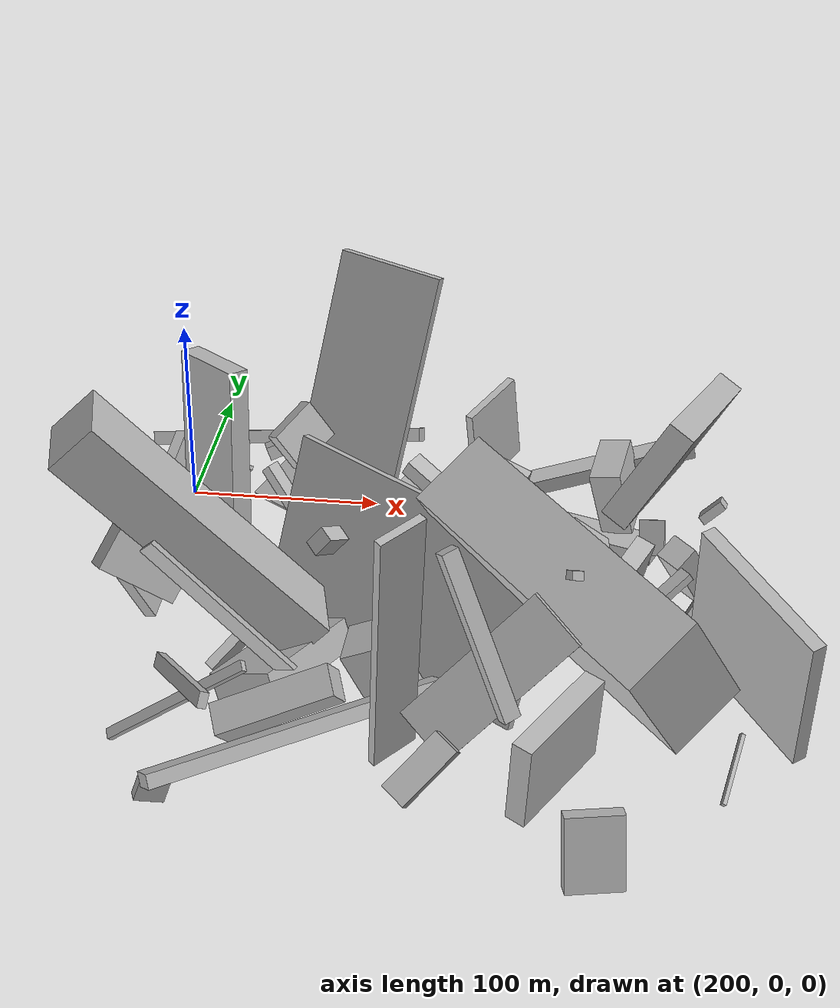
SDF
<sdf version="1.6">
 <world name="default">
  <model name="building_1">
   <static>0</static>
   <pose>272.4165706536021 -54.26228623214429 72.06441700890518 -2.3123806209111533 0.9907104650469202 0.10993199374310866</pose>
   <link name="link">
    <gravity>0</gravity>
    <pose>0 0 4.0 0 0 0</pose>
    <collision name="collision"><geometry><box><size>22 26 8</size></box></geometry></collision>
    <visual name="visual">
     <cast_shadows>0</cast_shadows>
     <geometry><box><size>22 26 8</size></box></geometry>
     <material>
      <script>
       <uri>model://HANNAS_wall/materials/scripts</uri>
       <uri>model://HANNAS_wall/materials/textures</uri>
       <name>vrc/HANNAS_wall</name>
      </script>
     </material>
    </visual>
   </link>
  </model>
  <model name="building_2">
   <static>0</static>
   <pose>323.82430526786845 -47.18001517054745 79.09906799330403 -1.2248675999530452 -1.2489831980606851 0.9320766156826963</pose>
   <link name="link">
    <gravity>0</gravity>
    <pose>0 0 26.5 0 0 0</pose>
    <collision name="collision"><geometry><box><size>150 6 53</size></box></geometry></collision>
    <visual name="visual">
     <cast_shadows>0</cast_shadows>
     <geometry><box><size>150 6 53</size></box></geometry>
     <material>
      <script>
       <uri>model://HANNAS_wall/materials/scripts</uri>
       <uri>model://HANNAS_wall/materials/textures</uri>
       <name>vrc/HANNAS_wall</name>
      </script>
     </material>
    </visual>
   </link>
  </model>
  <model name="building_7">
   <static>0</static>
   <pose>299.53094110872917 -233.97817949876355 25.650742074589843 1.98064890985388 -0.05651019234095352 -2.4577254015816905</pose>
   <link name="link">
    <gravity>0</gravity>
    <pose>0 0 4.5 0 0 0</pose>
    <collision name="collision"><geometry><box><size>150 7 9</size></box></geometry></collision>
    <visual name="visual">
     <cast_shadows>0</cast_shadows>
     <geometry><box><size>150 7 9</size></box></geometry>
     <material>
      <script>
       <uri>model://HANNAS_wall/materials/scripts</uri>
       <uri>model://HANNAS_wall/materials/textures</uri>
       <name>vrc/HANNAS_wall</name>
      </script>
     </material>
    </visual>
   </link>
  </model>
  <model name="building_8">
   <static>0</static>
   <pose>355.89411451288 -247.90377301242586 39.14202815098222 0.7057882572317773 0.44317083714370686 1.400607502678652</pose>
   <link name="link">
    <gravity>0</gravity>
    <pose>0 0 40.0 0 0 0</pose>
    <collision name="collision"><geometry><box><size>4 29 80</size></box></geometry></collision>
    <visual name="visual">
     <cast_shadows>0</cast_shadows>
     <geometry><box><size>4 29 80</size></box></geometry>
     <material>
      <script>
       <uri>model://HANNAS_wall/materials/scripts</uri>
       <uri>model://HANNAS_wall/materials/textures</uri>
       <name>vrc/HANNAS_wall</name>
      </script>
     </material>
    </visual>
   </link>
  </model>
  <model name="building_11">
   <static>0</static>
   <pose>272.50435108659383 -107.83186278597427 57.48532631388605 1.627277002997505 0.29188521207869556 1.013217597711566</pose>
   <link name="link">
    <gravity>0</gravity>
    <pose>0 0 75.0 0 0 0</pose>
    <collision name="collision"><geometry><box><size>4 86 150</size></box></geometry></collision>
    <visual name="visual">
     <cast_shadows>0</cast_shadows>
     <geometry><box><size>4 86 150</size></box></geometry>
     <material>
      <script>
       <uri>model://HANNAS_wall/materials/scripts</uri>
       <uri>model://HANNAS_wall/materials/textures</uri>
       <name>vrc/HANNAS_wall</name>
      </script>
     </material>
    </visual>
   </link>
  </model>
  <model name="building_14">
   <static>0</static>
   <pose>402.9279213064581 -189.28894554053488 61.9914713612671 0.9855820688995628 -0.1330575160869668 2.329380423470177</pose>
   <link name="link">
    <gravity>0</gravity>
    <pose>0 0 20.0 0 0 0</pose>
    <collision name="collision"><geometry><box><size>150 68 40</size></box></geometry></collision>
    <visual name="visual">
     <cast_shadows>0</cast_shadows>
     <geometry><box><size>150 68 40</size></box></geometry>
     <material>
      <script>
       <uri>model://HANNAS_wall/materials/scripts</uri>
       <uri>model://HANNAS_wall/materials/textures</uri>
       <name>vrc/HANNAS_wall</name>
      </script>
     </material>
    </visual>
   </link>
  </model>
  <model name="building_21">
   <static>0</static>
   <pose>249.59623431545262 -248.5707191138502 57.13827346581637 -0.3957613719345959 -0.41837577906019463 -1.1019933557663533</pose>
   <link name="link">
    <gravity>0</gravity>
    <pose>0 0 3.5 0 0 0</pose>
    <collision name="collision"><geometry><box><size>93 4 7</size></box></geometry></collision>
    <visual name="visual">
     <cast_shadows>0</cast_shadows>
     <geometry><box><size>93 4 7</size></box></geometry>
     <material>
      <script>
       <uri>model://HANNAS_wall/materials/scripts</uri>
       <uri>model://HANNAS_wall/materials/textures</uri>
       <name>vrc/HANNAS_wall</name>
      </script>
     </material>
    </visual>
   </link>
  </model>
  <model name="building_22">
   <static>0</static>
   <pose>330.1755720479846 -175.32609087321197 28.923262978509513 -1.8119866910495497 -1.131948626585235 -2.9596748544789415</pose>
   <link name="link">
    <gravity>0</gravity>
    <pose>0 0 11.5 0 0 0</pose>
    <collision name="collision"><geometry><box><size>42 19 23</size></box></geometry></collision>
    <visual name="visual">
     <cast_shadows>0</cast_shadows>
     <geometry><box><size>42 19 23</size></box></geometry>
     <material>
      <script>
       <uri>model://HANNAS_wall/materials/scripts</uri>
       <uri>model://HANNAS_wall/materials/textures</uri>
       <name>vrc/HANNAS_wall</name>
      </script>
     </material>
    </visual>
   </link>
  </model>
  <model name="building_26">
   <static>0</static>
   <pose>432.68558480805416 -86.23474516821247 22.97421442148746 -2.510820552903777 -1.2029055401955706 -1.035763901945189</pose>
   <link name="link">
    <gravity>0</gravity>
    <pose>0 0 5.0 0 0 0</pose>
    <collision name="collision"><geometry><box><size>33 28 10</size></box></geometry></collision>
    <visual name="visual">
     <cast_shadows>0</cast_shadows>
     <geometry><box><size>33 28 10</size></box></geometry>
     <material>
      <script>
       <uri>model://HANNAS_wall/materials/scripts</uri>
       <uri>model://HANNAS_wall/materials/textures</uri>
       <name>vrc/HANNAS_wall</name>
      </script>
     </material>
    </visual>
   </link>
  </model>
  <model name="building_30">
   <static>0</static>
   <pose>445.4106323668765 -288.4377560115181 20.085211243128448 -1.5691695710257498 0.26708528053410757 1.7794913127640006</pose>
   <link name="link">
    <gravity>0</gravity>
    <pose>0 0 13.0 0 0 0</pose>
    <collision name="collision"><geometry><box><size>8 35 26</size></box></geometry></collision>
    <visual name="visual">
     <cast_shadows>0</cast_shadows>
     <geometry><box><size>8 35 26</size></box></geometry>
     <material>
      <script>
       <uri>model://HANNAS_wall/materials/scripts</uri>
       <uri>model://HANNAS_wall/materials/textures</uri>
       <name>vrc/HANNAS_wall</name>
      </script>
     </material>
    </visual>
   </link>
  </model>
  <model name="building_32">
   <static>0</static>
   <pose>463.0518144538313 -42.21308406015045 66.90314749070225 1.0424813106014168 -0.3172337795324884 -1.7528937747881097</pose>
   <link name="link">
    <gravity>0</gravity>
    <pose>0 0 7.0 0 0 0</pose>
    <collision name="collision"><geometry><box><size>150 54 14</size></box></geometry></collision>
    <visual name="visual">
     <cast_shadows>0</cast_shadows>
     <geometry><box><size>150 54 14</size></box></geometry>
     <material>
      <script>
       <uri>model://HANNAS_wall/materials/scripts</uri>
       <uri>model://HANNAS_wall/materials/textures</uri>
       <name>vrc/HANNAS_wall</name>
      </script>
     </material>
    </visual>
   </link>
  </model>
  <model name="building_38">
   <static>0</static>
   <pose>248.59608517578522 20.025460723789642 31.408909467554523 2.647425657725896 -0.12892269191884337 -0.08147044329171586</pose>
   <link name="link">
    <gravity>0</gravity>
    <pose>0 0 3.5 0 0 0</pose>
    <collision name="collision"><geometry><box><size>150 12 7</size></box></geometry></collision>
    <visual name="visual">
     <cast_shadows>0</cast_shadows>
     <geometry><box><size>150 12 7</size></box></geometry>
     <material>
      <script>
       <uri>model://HANNAS_wall/materials/scripts</uri>
       <uri>model://HANNAS_wall/materials/textures</uri>
       <name>vrc/HANNAS_wall</name>
      </script>
     </material>
    </visual>
   </link>
  </model>
  <model name="building_50">
   <static>0</static>
   <pose>266.8485876791395 -201.04726991455078 22.487208587755237 -1.6423376085944326 -0.3676302391868262 -0.44023519375550174</pose>
   <link name="link">
    <gravity>0</gravity>
    <pose>0 0 30.0 0 0 0</pose>
    <collision name="collision"><geometry><box><size>36 15 60</size></box></geometry></collision>
    <visual name="visual">
     <cast_shadows>0</cast_shadows>
     <geometry><box><size>36 15 60</size></box></geometry>
     <material>
      <script>
       <uri>model://HANNAS_wall/materials/scripts</uri>
       <uri>model://HANNAS_wall/materials/textures</uri>
       <name>vrc/HANNAS_wall</name>
      </script>
     </material>
    </visual>
   </link>
  </model>
  <model name="building_54">
   <static>0</static>
   <pose>334.7251128299853 -245.45912888274557 76.63511146403529 -1.0094414192756203 -1.3050314058060704 -1.3066842023898335</pose>
   <link name="link">
    <gravity>0</gravity>
    <pose>0 0 12.0 0 0 0</pose>
    <collision name="collision"><geometry><box><size>148 4 24</size></box></geometry></collision>
    <visual name="visual">
     <cast_shadows>0</cast_shadows>
     <geometry><box><size>148 4 24</size></box></geometry>
     <material>
      <script>
       <uri>model://HANNAS_wall/materials/scripts</uri>
       <uri>model://HANNAS_wall/materials/textures</uri>
       <name>vrc/HANNAS_wall</name>
      </script>
     </material>
    </visual>
   </link>
  </model>
  <model name="building_59">
   <static>0</static>
   <pose>348.30504748870476 -32.4790671085981 26.346421425165563 0.37977118150858613 1.3636720048765962 0.6318101782393931</pose>
   <link name="link">
    <gravity>0</gravity>
    <pose>0 0 62.0 0 0 0</pose>
    <collision name="collision"><geometry><box><size>8 11 124</size></box></geometry></collision>
    <visual name="visual">
     <cast_shadows>0</cast_shadows>
     <geometry><box><size>8 11 124</size></box></geometry>
     <material>
      <script>
       <uri>model://HANNAS_wall/materials/scripts</uri>
       <uri>model://HANNAS_wall/materials/textures</uri>
       <name>vrc/HANNAS_wall</name>
      </script>
     </material>
    </visual>
   </link>
  </model>
  <model name="building_66">
   <static>0</static>
   <pose>362.34650578906485 -17.974493220015663 59.25987490030174 1.591349534543425 -0.1709936866481186 1.0402396660214364</pose>
   <link name="link">
    <gravity>0</gravity>
    <pose>0 0 2.0 0 0 0</pose>
    <collision name="collision"><geometry><box><size>37 47 4</size></box></geometry></collision>
    <visual name="visual">
     <cast_shadows>0</cast_shadows>
     <geometry><box><size>37 47 4</size></box></geometry>
     <material>
      <script>
       <uri>model://HANNAS_wall/materials/scripts</uri>
       <uri>model://HANNAS_wall/materials/textures</uri>
       <name>vrc/HANNAS_wall</name>
      </script>
     </material>
    </visual>
   </link>
  </model>
  <model name="building_69">
   <static>0</static>
   <pose>295.5151809721021 -95.54121584701332 41.83359936101713 0.40264331787859936 -1.0402920007554957 2.1527282207635134</pose>
   <link name="link">
    <gravity>0</gravity>
    <pose>0 0 6.0 0 0 0</pose>
    <collision name="collision"><geometry><box><size>44 41 12</size></box></geometry></collision>
    <visual name="visual">
     <cast_shadows>0</cast_shadows>
     <geometry><box><size>44 41 12</size></box></geometry>
     <material>
      <script>
       <uri>model://HANNAS_wall/materials/scripts</uri>
       <uri>model://HANNAS_wall/materials/textures</uri>
       <name>vrc/HANNAS_wall</name>
      </script>
     </material>
    </visual>
   </link>
  </model>
  <model name="building_70">
   <static>0</static>
   <pose>385.06504005541086 -13.542357240946401 11.882106798851314 1.575241294233193 -0.005774536526160705 -0.3410195749871662</pose>
   <link name="link">
    <gravity>0</gravity>
    <pose>0 0 9.5 0 0 0</pose>
    <collision name="collision"><geometry><box><size>147 7 19</size></box></geometry></collision>
    <visual name="visual">
     <cast_shadows>0</cast_shadows>
     <geometry><box><size>147 7 19</size></box></geometry>
     <material>
      <script>
       <uri>model://HANNAS_wall/materials/scripts</uri>
       <uri>model://HANNAS_wall/materials/textures</uri>
       <name>vrc/HANNAS_wall</name>
      </script>
     </material>
    </visual>
   </link>
  </model>
  <model name="building_76">
   <static>0</static>
   <pose>231.20951671327938 -161.60638350409948 54.28791934573558 -0.37893719455684943 -0.8404397373415851 0.8876210741805104</pose>
   <link name="link">
    <gravity>0</gravity>
    <pose>0 0 20.5 0 0 0</pose>
    <collision name="collision"><geometry><box><size>24 11 41</size></box></geometry></collision>
    <visual name="visual">
     <cast_shadows>0</cast_shadows>
     <geometry><box><size>24 11 41</size></box></geometry>
     <material>
      <script>
       <uri>model://HANNAS_wall/materials/scripts</uri>
       <uri>model://HANNAS_wall/materials/textures</uri>
       <name>vrc/HANNAS_wall</name>
      </script>
     </material>
    </visual>
   </link>
  </model>
  <model name="building_77">
   <static>0</static>
   <pose>440.95078785406366 16.307119961046386 14.604149155080801 1.7968680760133555 0.7375732570313581 -1.7499561509839627</pose>
   <link name="link">
    <gravity>0</gravity>
    <pose>0 0 2.5 0 0 0</pose>
    <collision name="collision"><geometry><box><size>31 4 5</size></box></geometry></collision>
    <visual name="visual">
     <cast_shadows>0</cast_shadows>
     <geometry><box><size>31 4 5</size></box></geometry>
     <material>
      <script>
       <uri>model://HANNAS_wall/materials/scripts</uri>
       <uri>model://HANNAS_wall/materials/textures</uri>
       <name>vrc/HANNAS_wall</name>
      </script>
     </material>
    </visual>
   </link>
  </model>
  <model name="building_81">
   <static>0</static>
   <pose>286.1913316409841 -15.697845868416167 47.74943884224068 -2.2719134780765513 0.4990954342939583 2.033391992171522</pose>
   <link name="link">
    <gravity>0</gravity>
    <pose>0 0 7.0 0 0 0</pose>
    <collision name="collision"><geometry><box><size>26 30 14</size></box></geometry></collision>
    <visual name="visual">
     <cast_shadows>0</cast_shadows>
     <geometry><box><size>26 30 14</size></box></geometry>
     <material>
      <script>
       <uri>model://HANNAS_wall/materials/scripts</uri>
       <uri>model://HANNAS_wall/materials/textures</uri>
       <name>vrc/HANNAS_wall</name>
      </script>
     </material>
    </visual>
   </link>
  </model>
  <model name="building_84">
   <static>0</static>
   <pose>206.79260134448518 -154.0768740287623 36.157502499357804 1.1760015206423167 0.22417685566211265 2.9014895473320643</pose>
   <link name="link">
    <gravity>0</gravity>
    <pose>0 0 45.0 0 0 0</pose>
    <collision name="collision"><geometry><box><size>6 31 90</size></box></geometry></collision>
    <visual name="visual">
     <cast_shadows>0</cast_shadows>
     <geometry><box><size>6 31 90</size></box></geometry>
     <material>
      <script>
       <uri>model://HANNAS_wall/materials/scripts</uri>
       <uri>model://HANNAS_wall/materials/textures</uri>
       <name>vrc/HANNAS_wall</name>
      </script>
     </material>
    </visual>
   </link>
  </model>
  <model name="building_87">
   <static>0</static>
   <pose>468.48031247606093 -120.16888971337647 27.873357361961776 2.4489455801473694 -0.8746554496738708 0.6731248386623152</pose>
   <link name="link">
    <gravity>0</gravity>
    <pose>0 0 4.5 0 0 0</pose>
    <collision name="collision"><geometry><box><size>33 7 9</size></box></geometry></collision>
    <visual name="visual">
     <cast_shadows>0</cast_shadows>
     <geometry><box><size>33 7 9</size></box></geometry>
     <material>
      <script>
       <uri>model://HANNAS_wall/materials/scripts</uri>
       <uri>model://HANNAS_wall/materials/textures</uri>
       <name>vrc/HANNAS_wall</name>
      </script>
     </material>
    </visual>
   </link>
  </model>
  <model name="building_88">
   <static>0</static>
   <pose>250.16417230099225 -166.56417208241993 94.80128771979537 -3.1159406693989338 -0.8447400220250769 -2.9277389412482497</pose>
   <link name="link">
    <gravity>0</gravity>
    <pose>0 0 13.5 0 0 0</pose>
    <collision name="collision"><geometry><box><size>150 38 27</size></box></geometry></collision>
    <visual name="visual">
     <cast_shadows>0</cast_shadows>
     <geometry><box><size>150 38 27</size></box></geometry>
     <material>
      <script>
       <uri>model://HANNAS_wall/materials/scripts</uri>
       <uri>model://HANNAS_wall/materials/textures</uri>
       <name>vrc/HANNAS_wall</name>
      </script>
     </material>
    </visual>
   </link>
  </model>
  <model name="building_92">
   <static>0</static>
   <pose>417.1063805961343 -221.08406544444577 107.92799656635208 0.20747293926986096 0.5163690394634395 1.9760441432843359</pose>
   <link name="link">
    <gravity>0</gravity>
    <pose>0 0 2.0 0 0 0</pose>
    <collision name="collision"><geometry><box><size>9 5 4</size></box></geometry></collision>
    <visual name="visual">
     <cast_shadows>0</cast_shadows>
     <geometry><box><size>9 5 4</size></box></geometry>
     <material>
      <script>
       <uri>model://HANNAS_wall/materials/scripts</uri>
       <uri>model://HANNAS_wall/materials/textures</uri>
       <name>vrc/HANNAS_wall</name>
      </script>
     </material>
    </visual>
   </link>
  </model>
  <model name="building_93">
   <static>0</static>
   <pose>242.08518112951535 -123.8398614540074 61.952470892703644 -0.08983439698702551 0.09246607444512286 0.8147045740805351</pose>
   <link name="link">
    <gravity>0</gravity>
    <pose>0 0 41.5 0 0 0</pose>
    <collision name="collision"><geometry><box><size>10 39 83</size></box></geometry></collision>
    <visual name="visual">
     <cast_shadows>0</cast_shadows>
     <geometry><box><size>10 39 83</size></box></geometry>
     <material>
      <script>
       <uri>model://HANNAS_wall/materials/scripts</uri>
       <uri>model://HANNAS_wall/materials/textures</uri>
       <name>vrc/HANNAS_wall</name>
      </script>
     </material>
    </visual>
   </link>
  </model>
  <model name="building_97">
   <static>0</static>
   <pose>204.9002610952822 11.93367757232237 28.294073485154854 -0.4534662274468112 0.2727865309434531 -0.8301716518800814</pose>
   <link name="link">
    <gravity>0</gravity>
    <pose>0 0 2.0 0 0 0</pose>
    <collision name="collision"><geometry><box><size>4 9 4</size></box></geometry></collision>
    <visual name="visual">
     <cast_shadows>0</cast_shadows>
     <geometry><box><size>4 9 4</size></box></geometry>
     <material>
      <script>
       <uri>model://HANNAS_wall/materials/scripts</uri>
       <uri>model://HANNAS_wall/materials/textures</uri>
       <name>vrc/HANNAS_wall</name>
      </script>
     </material>
    </visual>
   </link>
  </model>
  <model name="building_107">
   <static>0</static>
   <pose>471.98783756430316 -161.94670867295247 68.51768978638121 -2.5700176841711553 -1.3320297466568016 -1.4937650222367462</pose>
   <link name="link">
    <gravity>0</gravity>
    <pose>0 0 40.0 0 0 0</pose>
    <collision name="collision"><geometry><box><size>76 7 80</size></box></geometry></collision>
    <visual name="visual">
     <cast_shadows>0</cast_shadows>
     <geometry><box><size>76 7 80</size></box></geometry>
     <material>
      <script>
       <uri>model://HANNAS_wall/materials/scripts</uri>
       <uri>model://HANNAS_wall/materials/textures</uri>
       <name>vrc/HANNAS_wall</name>
      </script>
     </material>
    </visual>
   </link>
  </model>
  <model name="building_109">
   <static>0</static>
   <pose>304.1336155451566 -156.6852905147423 81.67474473626548 -2.5596682743202566 0.43603400859945723 1.0797975203839605</pose>
   <link name="link">
    <gravity>0</gravity>
    <pose>0 0 5.5 0 0 0</pose>
    <collision name="collision"><geometry><box><size>15 8 11</size></box></geometry></collision>
    <visual name="visual">
     <cast_shadows>0</cast_shadows>
     <geometry><box><size>15 8 11</size></box></geometry>
     <material>
      <script>
       <uri>model://HANNAS_wall/materials/scripts</uri>
       <uri>model://HANNAS_wall/materials/textures</uri>
       <name>vrc/HANNAS_wall</name>
      </script>
     </material>
    </visual>
   </link>
  </model>
  <model name="building_112">
   <static>0</static>
   <pose>471.786835492529 -92.10025492110007 27.332116328544537 1.3220317504219659 -0.9481626595227934 -2.096692627279783</pose>
   <link name="link">
    <gravity>0</gravity>
    <pose>0 0 7.0 0 0 0</pose>
    <collision name="collision"><geometry><box><size>41 13 14</size></box></geometry></collision>
    <visual name="visual">
     <cast_shadows>0</cast_shadows>
     <geometry><box><size>41 13 14</size></box></geometry>
     <material>
      <script>
       <uri>model://HANNAS_wall/materials/scripts</uri>
       <uri>model://HANNAS_wall/materials/textures</uri>
       <name>vrc/HANNAS_wall</name>
      </script>
     </material>
    </visual>
   </link>
  </model>
  <model name="building_113">
   <static>0</static>
   <pose>477.8470549618419 -15.484068607919621 21.123967574161625 -2.3948702480489037 -0.3402044348110859 -1.6533346260984398</pose>
   <link name="link">
    <gravity>0</gravity>
    <pose>0 0 2.5 0 0 0</pose>
    <collision name="collision"><geometry><box><size>14 14 5</size></box></geometry></collision>
    <visual name="visual">
     <cast_shadows>0</cast_shadows>
     <geometry><box><size>14 14 5</size></box></geometry>
     <material>
      <script>
       <uri>model://HANNAS_wall/materials/scripts</uri>
       <uri>model://HANNAS_wall/materials/textures</uri>
       <name>vrc/HANNAS_wall</name>
      </script>
     </material>
    </visual>
   </link>
  </model>
  <model name="building_115">
   <static>0</static>
   <pose>353.01309819761644 -19.64668493168085 20.567334297185724 1.6486258766489386 0.974522223007169 0.9962730558333288</pose>
   <link name="link">
    <gravity>0</gravity>
    <pose>0 0 1.0 0 0 0</pose>
    <collision name="collision"><geometry><box><size>2 23 2</size></box></geometry></collision>
    <visual name="visual">
     <cast_shadows>0</cast_shadows>
     <geometry><box><size>2 23 2</size></box></geometry>
     <material>
      <script>
       <uri>model://HANNAS_wall/materials/scripts</uri>
       <uri>model://HANNAS_wall/materials/textures</uri>
       <name>vrc/HANNAS_wall</name>
      </script>
     </material>
    </visual>
   </link>
  </model>
  <model name="building_119">
   <static>0</static>
   <pose>430.77141010985406 -11.7515633238248 39.1825777791138 1.752064523722054 -0.18484110964661682 -0.17041859934727197</pose>
   <link name="link">
    <gravity>0</gravity>
    <pose>0 0 15.0 0 0 0</pose>
    <collision name="collision"><geometry><box><size>16 38 30</size></box></geometry></collision>
    <visual name="visual">
     <cast_shadows>0</cast_shadows>
     <geometry><box><size>16 38 30</size></box></geometry>
     <material>
      <script>
       <uri>model://HANNAS_wall/materials/scripts</uri>
       <uri>model://HANNAS_wall/materials/textures</uri>
       <name>vrc/HANNAS_wall</name>
      </script>
     </material>
    </visual>
   </link>
  </model>
  <model name="building_121">
   <static>0</static>
   <pose>362.5126549069287 -103.56632856804325 31.35300545219346 1.3322981459759493 -0.28767061067778343 -2.604710417797711</pose>
   <link name="link">
    <gravity>0</gravity>
    <pose>0 0 19.5 0 0 0</pose>
    <collision name="collision"><geometry><box><size>9 10 39</size></box></geometry></collision>
    <visual name="visual">
     <cast_shadows>0</cast_shadows>
     <geometry><box><size>9 10 39</size></box></geometry>
     <material>
      <script>
       <uri>model://HANNAS_wall/materials/scripts</uri>
       <uri>model://HANNAS_wall/materials/textures</uri>
       <name>vrc/HANNAS_wall</name>
      </script>
     </material>
    </visual>
   </link>
  </model>
  <model name="building_126">
   <static>0</static>
   <pose>482.0204464749688 -131.50363423665362 9.053333840879532 -2.758881141840941 -1.4707591011032302 1.7298000176734758</pose>
   <link name="link">
    <gravity>0</gravity>
    <pose>0 0 8.5 0 0 0</pose>
    <collision name="collision"><geometry><box><size>4 8 17</size></box></geometry></collision>
    <visual name="visual">
     <cast_shadows>0</cast_shadows>
     <geometry><box><size>4 8 17</size></box></geometry>
     <material>
      <script>
       <uri>model://HANNAS_wall/materials/scripts</uri>
       <uri>model://HANNAS_wall/materials/textures</uri>
       <name>vrc/HANNAS_wall</name>
      </script>
     </material>
    </visual>
   </link>
  </model>
  <model name="building_143">
   <static>0</static>
   <pose>411.3037829769222 -142.93552527532992 31.390155059582355 -0.9537717465340391 0.4682771576180776 2.843831526238619</pose>
   <link name="link">
    <gravity>0</gravity>
    <pose>0 0 11.0 0 0 0</pose>
    <collision name="collision"><geometry><box><size>21 18 22</size></box></geometry></collision>
    <visual name="visual">
     <cast_shadows>0</cast_shadows>
     <geometry><box><size>21 18 22</size></box></geometry>
     <material>
      <script>
       <uri>model://HANNAS_wall/materials/scripts</uri>
       <uri>model://HANNAS_wall/materials/textures</uri>
       <name>vrc/HANNAS_wall</name>
      </script>
     </material>
    </visual>
   </link>
  </model>
  <model name="building_146">
   <static>0</static>
   <pose>254.78223670419123 -171.11964581761936 18.83630260855442 -0.6009238546557901 -0.3327963380467498 2.5436353988476554</pose>
   <link name="link">
    <gravity>0</gravity>
    <pose>0 0 5.0 0 0 0</pose>
    <collision name="collision"><geometry><box><size>5 22 10</size></box></geometry></collision>
    <visual name="visual">
     <cast_shadows>0</cast_shadows>
     <geometry><box><size>5 22 10</size></box></geometry>
     <material>
      <script>
       <uri>model://HANNAS_wall/materials/scripts</uri>
       <uri>model://HANNAS_wall/materials/textures</uri>
       <name>vrc/HANNAS_wall</name>
      </script>
     </material>
    </visual>
   </link>
  </model>
  <model name="building_149">
   <static>0</static>
   <pose>338.2261918892586 -48.58712283249509 39.31817094539959 0.514202147392451 0.00025033448332950875 1.1432279904469524</pose>
   <link name="link">
    <gravity>0</gravity>
    <pose>0 0 4.0 0 0 0</pose>
    <collision name="collision"><geometry><box><size>11 40 8</size></box></geometry></collision>
    <visual name="visual">
     <cast_shadows>0</cast_shadows>
     <geometry><box><size>11 40 8</size></box></geometry>
     <material>
      <script>
       <uri>model://HANNAS_wall/materials/scripts</uri>
       <uri>model://HANNAS_wall/materials/textures</uri>
       <name>vrc/HANNAS_wall</name>
      </script>
     </material>
    </visual>
   </link>
  </model>
  <model name="building_151">
   <static>0</static>
   <pose>398.88753922413025 -268.32858460443714 33.033025440867625 1.4717367009983264 -0.12643676745590526 2.6250011699687064</pose>
   <link name="link">
    <gravity>0</gravity>
    <pose>0 0 27.5 0 0 0</pose>
    <collision name="collision"><geometry><box><size>10 46 55</size></box></geometry></collision>
    <visual name="visual">
     <cast_shadows>0</cast_shadows>
     <geometry><box><size>10 46 55</size></box></geometry>
     <material>
      <script>
       <uri>model://HANNAS_wall/materials/scripts</uri>
       <uri>model://HANNAS_wall/materials/textures</uri>
       <name>vrc/HANNAS_wall</name>
      </script>
     </material>
    </visual>
   </link>
  </model>
  <model name="building_163">
   <static>0</static>
   <pose>367.6430553511609 -66.95000779791155 51.09827096648612 -0.7179516903933189 -1.0728663075476645 -1.1770931818168844</pose>
   <link name="link">
    <gravity>0</gravity>
    <pose>0 0 10.0 0 0 0</pose>
    <collision name="collision"><geometry><box><size>12 24 20</size></box></geometry></collision>
    <visual name="visual">
     <cast_shadows>0</cast_shadows>
     <geometry><box><size>12 24 20</size></box></geometry>
     <material>
      <script>
       <uri>model://HANNAS_wall/materials/scripts</uri>
       <uri>model://HANNAS_wall/materials/textures</uri>
       <name>vrc/HANNAS_wall</name>
      </script>
     </material>
    </visual>
   </link>
  </model>
  <model name="building_165">
   <static>0</static>
   <pose>463.50037197014666 -166.72435132156312 18.723077260003553 0.2633043459364751 0.9061849683531417 3.114096929117027</pose>
   <link name="link">
    <gravity>0</gravity>
    <pose>0 0 7.5 0 0 0</pose>
    <collision name="collision"><geometry><box><size>15 2 15</size></box></geometry></collision>
    <visual name="visual">
     <cast_shadows>0</cast_shadows>
     <geometry><box><size>15 2 15</size></box></geometry>
     <material>
      <script>
       <uri>model://HANNAS_wall/materials/scripts</uri>
       <uri>model://HANNAS_wall/materials/textures</uri>
       <name>vrc/HANNAS_wall</name>
      </script>
     </material>
    </visual>
   </link>
  </model>
  <model name="building_167">
   <static>0</static>
   <pose>263.7257716801585 -225.4909103596185 85.15951162221147 2.272829052414609 -0.6139839154533926 -1.1930417873700345</pose>
   <link name="link">
    <gravity>0</gravity>
    <pose>0 0 1.0 0 0 0</pose>
    <collision name="collision"><geometry><box><size>65 80 2</size></box></geometry></collision>
    <visual name="visual">
     <cast_shadows>0</cast_shadows>
     <geometry><box><size>65 80 2</size></box></geometry>
     <material>
      <script>
       <uri>model://HANNAS_wall/materials/scripts</uri>
       <uri>model://HANNAS_wall/materials/textures</uri>
       <name>vrc/HANNAS_wall</name>
      </script>
     </material>
    </visual>
   </link>
  </model>
  <model name="building_168">
   <static>0</static>
   <pose>346.43290919925926 -272.17295651105064 25.08182125359557 0.7974432244944076 -0.47936154125475816 2.58817115923491</pose>
   <link name="link">
    <gravity>0</gravity>
    <pose>0 0 16.5 0 0 0</pose>
    <collision name="collision"><geometry><box><size>13 9 33</size></box></geometry></collision>
    <visual name="visual">
     <cast_shadows>0</cast_shadows>
     <geometry><box><size>13 9 33</size></box></geometry>
     <material>
      <script>
       <uri>model://HANNAS_wall/materials/scripts</uri>
       <uri>model://HANNAS_wall/materials/textures</uri>
       <name>vrc/HANNAS_wall</name>
      </script>
     </material>
    </visual>
   </link>
  </model>
  <model name="building_173">
   <static>0</static>
   <pose>383.4783848215449 -255.9811296479235 103.18926411556986 1.7810715754041238 -0.33012250766901513 -0.973488422602257</pose>
   <link name="link">
    <gravity>0</gravity>
    <pose>0 0 4.0 0 0 0</pose>
    <collision name="collision"><geometry><box><size>6 80 8</size></box></geometry></collision>
    <visual name="visual">
     <cast_shadows>0</cast_shadows>
     <geometry><box><size>6 80 8</size></box></geometry>
     <material>
      <script>
       <uri>model://HANNAS_wall/materials/scripts</uri>
       <uri>model://HANNAS_wall/materials/textures</uri>
       <name>vrc/HANNAS_wall</name>
      </script>
     </material>
    </visual>
   </link>
  </model>
  <model name="building_174">
   <static>0</static>
   <pose>433.5644176006345 -149.22711417532173 16.236520452204235 1.6769744744259005 0.009672479234129727 -0.8848293560520406</pose>
   <link name="link">
    <gravity>0</gravity>
    <pose>0 0 3.5 0 0 0</pose>
    <collision name="collision"><geometry><box><size>80 2 7</size></box></geometry></collision>
    <visual name="visual">
     <cast_shadows>0</cast_shadows>
     <geometry><box><size>80 2 7</size></box></geometry>
     <material>
      <script>
       <uri>model://HANNAS_wall/materials/scripts</uri>
       <uri>model://HANNAS_wall/materials/textures</uri>
       <name>vrc/HANNAS_wall</name>
      </script>
     </material>
    </visual>
   </link>
  </model>
  <model name="building_177">
   <static>0</static>
   <pose>294.15561984248825 -118.7543412744974 17.404751470276345 -0.970339744925065 -0.03389351537815417 -2.3959624939430233</pose>
   <link name="link">
    <gravity>0</gravity>
    <pose>0 0 9.5 0 0 0</pose>
    <collision name="collision"><geometry><box><size>6 5 19</size></box></geometry></collision>
    <visual name="visual">
     <cast_shadows>0</cast_shadows>
     <geometry><box><size>6 5 19</size></box></geometry>
     <material>
      <script>
       <uri>model://HANNAS_wall/materials/scripts</uri>
       <uri>model://HANNAS_wall/materials/textures</uri>
       <name>vrc/HANNAS_wall</name>
      </script>
     </material>
    </visual>
   </link>
  </model>
  <model name="building_178">
   <static>0</static>
   <pose>246.14088534823406 -242.5649831841564 41.9848754301874 -0.8810721715461207 -0.6321429749475272 -0.07627871604285248</pose>
   <link name="link">
    <gravity>0</gravity>
    <pose>0 0 2.5 0 0 0</pose>
    <collision name="collision"><geometry><box><size>80 3 5</size></box></geometry></collision>
    <visual name="visual">
     <cast_shadows>0</cast_shadows>
     <geometry><box><size>80 3 5</size></box></geometry>
     <material>
      <script>
       <uri>model://HANNAS_wall/materials/scripts</uri>
       <uri>model://HANNAS_wall/materials/textures</uri>
       <name>vrc/HANNAS_wall</name>
      </script>
     </material>
    </visual>
   </link>
  </model>
  <model name="building_181">
   <static>0</static>
   <pose>244.73992311384063 -16.011636609049717 38.284841183888844 0.7455303296860918 -1.1374386007354889 2.711372789096353</pose>
   <link name="link">
    <gravity>0</gravity>
    <pose>0 0 17.5 0 0 0</pose>
    <collision name="collision"><geometry><box><size>7 12 35</size></box></geometry></collision>
    <visual name="visual">
     <cast_shadows>0</cast_shadows>
     <geometry><box><size>7 12 35</size></box></geometry>
     <material>
      <script>
       <uri>model://HANNAS_wall/materials/scripts</uri>
       <uri>model://HANNAS_wall/materials/textures</uri>
       <name>vrc/HANNAS_wall</name>
      </script>
     </material>
    </visual>
   </link>
  </model>
  <model name="building_183">
   <static>0</static>
   <pose>215.38418807910008 -85.71078239161194 6.975946432601246 0.9425824316297268 -0.1961724586448138 2.540587122541891</pose>
   <link name="link">
    <gravity>0</gravity>
    <pose>0 0 1.0 0 0 0</pose>
    <collision name="collision"><geometry><box><size>37 2 2</size></box></geometry></collision>
    <visual name="visual">
     <cast_shadows>0</cast_shadows>
     <geometry><box><size>37 2 2</size></box></geometry>
     <material>
      <script>
       <uri>model://HANNAS_wall/materials/scripts</uri>
       <uri>model://HANNAS_wall/materials/textures</uri>
       <name>vrc/HANNAS_wall</name>
      </script>
     </material>
    </visual>
   </link>
  </model>
  <model name="building_200">
   <static>0</static>
   <pose>455.06639615898035 -61.272157812227675 29.336391894066 1.7551484604085719 -0.4468496916812218 -1.8784071407555192</pose>
   <link name="link">
    <gravity>0</gravity>
    <pose>0 0 6.5 0 0 0</pose>
    <collision name="collision"><geometry><box><size>2 18 13</size></box></geometry></collision>
    <visual name="visual">
     <cast_shadows>0</cast_shadows>
     <geometry><box><size>2 18 13</size></box></geometry>
     <material>
      <script>
       <uri>model://HANNAS_wall/materials/scripts</uri>
       <uri>model://HANNAS_wall/materials/textures</uri>
       <name>vrc/HANNAS_wall</name>
      </script>
     </material>
    </visual>
   </link>
  </model>
  <model name="building_202">
   <static>0</static>
   <pose>421.51172199212783 -117.25901174879743 54.1656765556843 -2.415953209229553 0.7497130380448954 0.6822010551069434</pose>
   <link name="link">
    <gravity>0</gravity>
    <pose>0 0 5.0 0 0 0</pose>
    <collision name="collision"><geometry><box><size>28 27 10</size></box></geometry></collision>
    <visual name="visual">
     <cast_shadows>0</cast_shadows>
     <geometry><box><size>28 27 10</size></box></geometry>
     <material>
      <script>
       <uri>model://HANNAS_wall/materials/scripts</uri>
       <uri>model://HANNAS_wall/materials/textures</uri>
       <name>vrc/HANNAS_wall</name>
      </script>
     </material>
    </visual>
   </link>
  </model>
  <model name="building_203">
   <static>0</static>
   <pose>388.6335734648602 -110.041894027423 17.96260667779375 0.8037437409455165 -1.4467930958838353 2.460974453132665</pose>
   <link name="link">
    <gravity>0</gravity>
    <pose>0 0 2.0 0 0 0</pose>
    <collision name="collision"><geometry><box><size>17 8 4</size></box></geometry></collision>
    <visual name="visual">
     <cast_shadows>0</cast_shadows>
     <geometry><box><size>17 8 4</size></box></geometry>
     <material>
      <script>
       <uri>model://HANNAS_wall/materials/scripts</uri>
       <uri>model://HANNAS_wall/materials/textures</uri>
       <name>vrc/HANNAS_wall</name>
      </script>
     </material>
    </visual>
   </link>
  </model>
  <model name="building_204">
   <static>0</static>
   <pose>386.94617225750034 -125.64801066371037 13.74738159800644 1.346892684932233 -0.7834746716937666 -1.4980305013132567</pose>
   <link name="link">
    <gravity>0</gravity>
    <pose>0 0 40.0 0 0 0</pose>
    <collision name="collision"><geometry><box><size>5 2 80</size></box></geometry></collision>
    <visual name="visual">
     <cast_shadows>0</cast_shadows>
     <geometry><box><size>5 2 80</size></box></geometry>
     <material>
      <script>
       <uri>model://HANNAS_wall/materials/scripts</uri>
       <uri>model://HANNAS_wall/materials/textures</uri>
       <name>vrc/HANNAS_wall</name>
      </script>
     </material>
    </visual>
   </link>
  </model>
  <model name="building_208">
   <static>0</static>
   <pose>270.9607113380586 -42.83129836108815 23.608041093003173 2.8013936692705657 -1.085548380823284 0.2773418501927744</pose>
   <link name="link">
    <gravity>0</gravity>
    <pose>0 0 12.0 0 0 0</pose>
    <collision name="collision"><geometry><box><size>8 43 24</size></box></geometry></collision>
    <visual name="visual">
     <cast_shadows>0</cast_shadows>
     <geometry><box><size>8 43 24</size></box></geometry>
     <material>
      <script>
       <uri>model://HANNAS_wall/materials/scripts</uri>
       <uri>model://HANNAS_wall/materials/textures</uri>
       <name>vrc/HANNAS_wall</name>
      </script>
     </material>
    </visual>
   </link>
  </model>
  <model name="building_214">
   <static>0</static>
   <pose>309.5771099207047 -19.02655656282329 3.9555207652010864 -2.3387219590245496 -1.4063111993837294 1.4049442999747703</pose>
   <link name="link">
    <gravity>0</gravity>
    <pose>0 0 7.5 0 0 0</pose>
    <collision name="collision"><geometry><box><size>2 20 15</size></box></geometry></collision>
    <visual name="visual">
     <cast_shadows>0</cast_shadows>
     <geometry><box><size>2 20 15</size></box></geometry>
     <material>
      <script>
       <uri>model://HANNAS_wall/materials/scripts</uri>
       <uri>model://HANNAS_wall/materials/textures</uri>
       <name>vrc/HANNAS_wall</name>
      </script>
     </material>
    </visual>
   </link>
  </model>
  <model name="building_218">
   <static>0</static>
   <pose>266.79551091807065 -251.4265025402246 41.56540346614291 1.053643783339673 -0.5922144811436159 1.9522144095791303</pose>
   <link name="link">
    <gravity>0</gravity>
    <pose>0 0 28.5 0 0 0</pose>
    <collision name="collision"><geometry><box><size>15 13 57</size></box></geometry></collision>
    <visual name="visual">
     <cast_shadows>0</cast_shadows>
     <geometry><box><size>15 13 57</size></box></geometry>
     <material>
      <script>
       <uri>model://HANNAS_wall/materials/scripts</uri>
       <uri>model://HANNAS_wall/materials/textures</uri>
       <name>vrc/HANNAS_wall</name>
      </script>
     </material>
    </visual>
   </link>
  </model>
  <model name="building_221">
   <static>0</static>
   <pose>275.1222731885554 -78.4308139047202 36.379382619437855 -0.7659316032497007 -0.10296868985863869 0.8935539114396672</pose>
   <link name="link">
    <gravity>0</gravity>
    <pose>0 0 16.5 0 0 0</pose>
    <collision name="collision"><geometry><box><size>6 8 33</size></box></geometry></collision>
    <visual name="visual">
     <cast_shadows>0</cast_shadows>
     <geometry><box><size>6 8 33</size></box></geometry>
     <material>
      <script>
       <uri>model://HANNAS_wall/materials/scripts</uri>
       <uri>model://HANNAS_wall/materials/textures</uri>
       <name>vrc/HANNAS_wall</name>
      </script>
     </material>
    </visual>
   </link>
  </model>
  <model name="building_223">
   <static>0</static>
   <pose>217.013292286117 -23.342734049686584 12.53335838710776 -0.1890028151458965 0.6820979362289725 -1.8428978743817581</pose>
   <link name="link">
    <gravity>0</gravity>
    <pose>0 0 9.0 0 0 0</pose>
    <collision name="collision"><geometry><box><size>2 37 18</size></box></geometry></collision>
    <visual name="visual">
     <cast_shadows>0</cast_shadows>
     <geometry><box><size>2 37 18</size></box></geometry>
     <material>
      <script>
       <uri>model://HANNAS_wall/materials/scripts</uri>
       <uri>model://HANNAS_wall/materials/textures</uri>
       <name>vrc/HANNAS_wall</name>
      </script>
     </material>
    </visual>
   </link>
  </model>
  <model name="building_225">
   <static>0</static>
   <pose>391.25179220736055 5.032296390473434 4.453005268636796 2.631172257461291 0.4890612638898352 2.023828453936212</pose>
   <link name="link">
    <gravity>0</gravity>
    <pose>0 0 1.5 0 0 0</pose>
    <collision name="collision"><geometry><box><size>2 5 3</size></box></geometry></collision>
    <visual name="visual">
     <cast_shadows>0</cast_shadows>
     <geometry><box><size>2 5 3</size></box></geometry>
     <material>
      <script>
       <uri>model://HANNAS_wall/materials/scripts</uri>
       <uri>model://HANNAS_wall/materials/textures</uri>
       <name>vrc/HANNAS_wall</name>
      </script>
     </material>
    </visual>
   </link>
  </model>
  <model name="building_227">
   <static>0</static>
   <pose>491.3927689610803 -221.56634213536782 12.734490465631438 0.6120694274398786 -0.7662968516458425 -0.6766504056100857</pose>
   <link name="link">
    <gravity>0</gravity>
    <pose>0 0 1.0 0 0 0</pose>
    <collision name="collision"><geometry><box><size>2 36 2</size></box></geometry></collision>
    <visual name="visual">
     <cast_shadows>0</cast_shadows>
     <geometry><box><size>2 36 2</size></box></geometry>
     <material>
      <script>
       <uri>model://HANNAS_wall/materials/scripts</uri>
       <uri>model://HANNAS_wall/materials/textures</uri>
       <name>vrc/HANNAS_wall</name>
      </script>
     </material>
    </visual>
   </link>
  </model>
  <model name="building_230">
   <static>0</static>
   <pose>231.13294940378148 -263.52204582579304 12.723008863181192 -2.8248681293167053 -1.2387747559455669 0.07365947324517386</pose>
   <link name="link">
    <gravity>0</gravity>
    <pose>0 0 7.0 0 0 0</pose>
    <collision name="collision"><geometry><box><size>13 5 14</size></box></geometry></collision>
    <visual name="visual">
     <cast_shadows>0</cast_shadows>
     <geometry><box><size>13 5 14</size></box></geometry>
     <material>
      <script>
       <uri>model://HANNAS_wall/materials/scripts</uri>
       <uri>model://HANNAS_wall/materials/textures</uri>
       <name>vrc/HANNAS_wall</name>
      </script>
     </material>
    </visual>
   </link>
  </model>
  <model name="building_246">
   <static>0</static>
   <pose>229.66941802479852 -53.42222079649872 52.7087635151451 -1.9484165796236372 -0.6004491185088574 -1.2652786520194548</pose>
   <link name="link">
    <gravity>0</gravity>
    <pose>0 0 7.0 0 0 0</pose>
    <collision name="collision"><geometry><box><size>34 2 14</size></box></geometry></collision>
    <visual name="visual">
     <cast_shadows>0</cast_shadows>
     <geometry><box><size>34 2 14</size></box></geometry>
     <material>
      <script>
       <uri>model://HANNAS_wall/materials/scripts</uri>
       <uri>model://HANNAS_wall/materials/textures</uri>
       <name>vrc/HANNAS_wall</name>
      </script>
     </material>
    </visual>
   </link>
  </model>
  <model name="building_248">
   <static>0</static>
   <pose>288.4333456282354 -7.630623387823546 16.333720648086775 1.7807544330803124 -1.1293541737877042 -2.4769863715955083</pose>
   <link name="link">
    <gravity>0</gravity>
    <pose>0 0 26.0 0 0 0</pose>
    <collision name="collision"><geometry><box><size>2 61 52</size></box></geometry></collision>
    <visual name="visual">
     <cast_shadows>0</cast_shadows>
     <geometry><box><size>2 61 52</size></box></geometry>
     <material>
      <script>
       <uri>model://HANNAS_wall/materials/scripts</uri>
       <uri>model://HANNAS_wall/materials/textures</uri>
       <name>vrc/HANNAS_wall</name>
      </script>
     </material>
    </visual>
   </link>
  </model>
  <model name="building_249">
   <static>0</static>
   <pose>451.7073971314153 -162.37854973476203 59.05715771728257 -0.09740635676026106 1.0490092984965016 0.5404696517994161</pose>
   <link name="link">
    <gravity>0</gravity>
    <pose>0 0 10.0 0 0 0</pose>
    <collision name="collision"><geometry><box><size>4 7 20</size></box></geometry></collision>
    <visual name="visual">
     <cast_shadows>0</cast_shadows>
     <geometry><box><size>4 7 20</size></box></geometry>
     <material>
      <script>
       <uri>model://HANNAS_wall/materials/scripts</uri>
       <uri>model://HANNAS_wall/materials/textures</uri>
       <name>vrc/HANNAS_wall</name>
      </script>
     </material>
    </visual>
   </link>
  </model>
  <model name="building_254">
   <static>0</static>
   <pose>273.70008166475344 -31.97006679114822 60.232852919827124 -0.662697148464893 0.9065555782381836 0.2693952757576587</pose>
   <link name="link">
    <gravity>0</gravity>
    <pose>0 0 1.0 0 0 0</pose>
    <collision name="collision"><geometry><box><size>20 2 2</size></box></geometry></collision>
    <visual name="visual">
     <cast_shadows>0</cast_shadows>
     <geometry><box><size>20 2 2</size></box></geometry>
     <material>
      <script>
       <uri>model://HANNAS_wall/materials/scripts</uri>
       <uri>model://HANNAS_wall/materials/textures</uri>
       <name>vrc/HANNAS_wall</name>
      </script>
     </material>
    </visual>
   </link>
  </model>
 </world>
</sdf>
